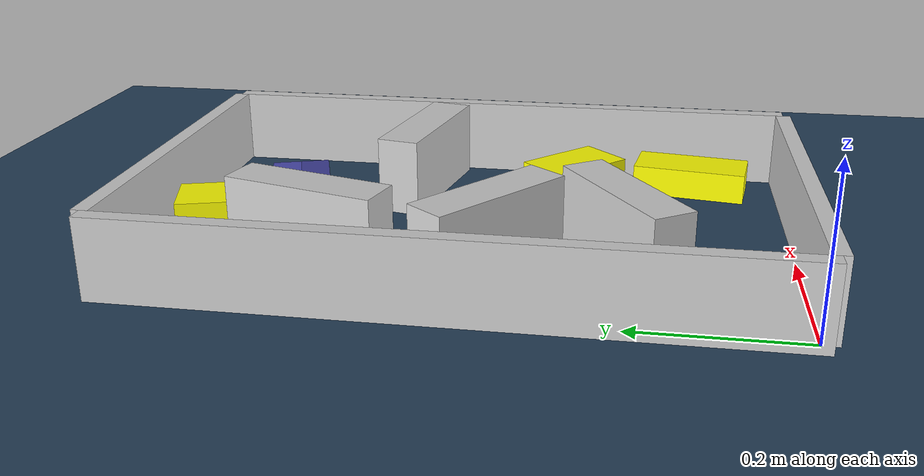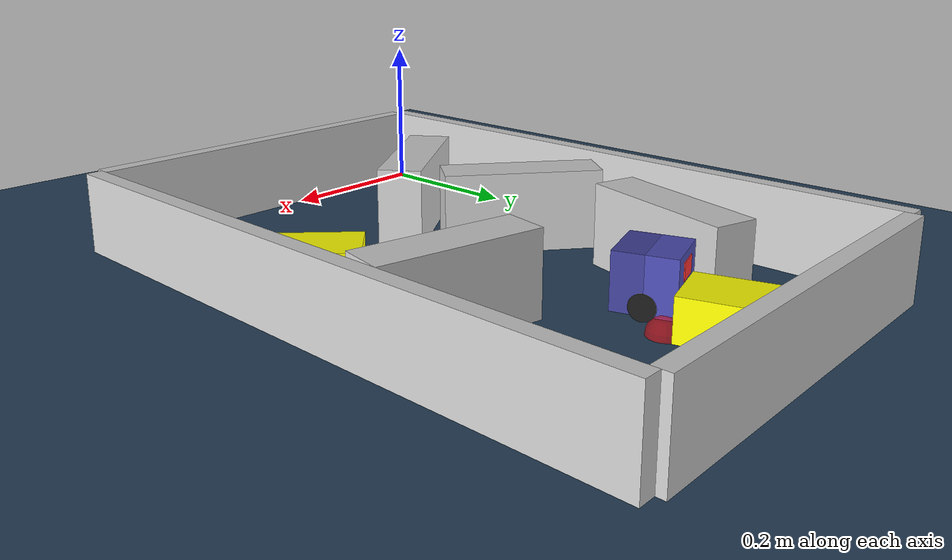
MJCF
<?xml version='1.0' encoding='utf-8'?>
<mujoco model="real_buildable">
  <compiler angle="degree" />
  <option timestep="0.002" integrator="implicitfast" iterations="100" cone="elliptic" />
  <default>
    <geom density="1" />
  </default>
  <asset>
    <texture builtin="gradient" height="3072" rgb1="0.3 0.5 0.7" rgb2="0 0 0" type="skybox" width="512" />
    <texture builtin="checker" height="300" mark="edge" markrgb="0.8 0.8 0.8" name="groundplane" rgb1="0.2 0.3 0.4" rgb2="0.1 0.2 0.3" type="2d" width="300" />
    <material name="groundplane" reflectance="0.2" texrepeat="5 5" texture="groundplane" texuniform="true" />
  </asset>
  <worldbody>
    <light dir="0 0 -1" directional="true" pos="0 0 1.5" />
    <geom name="floor" type="plane" condim="4" friction="0.5 0.005 0.001" material="groundplane" size="0 0 0.05" />
    <body name="walls">
      <geom name="wall_boundary_left" type="box" condim="4" friction="1.0 0.005 0.0001" rgba="0.8 0.8 0.8 1" pos="-0.010000 0.387500 0.050000" euler="0 0 0.000000" size="0.010000 0.397500 0.050000" />
      <geom name="wall_boundary_right" type="box" condim="4" friction="1.0 0.005 0.0001" rgba="0.8 0.8 0.8 1" pos="0.500000 0.387500 0.050000" euler="0 0 0.000000" size="0.010000 0.397500 0.050000" />
      <geom name="wall_boundary_bottom" type="box" condim="4" friction="1.0 0.005 0.0001" rgba="0.8 0.8 0.8 1" pos="0.245000 -0.010000 0.050000" euler="0 0 0.000000" size="0.245000 0.010000 0.050000" />
      <geom name="wall_boundary_top" type="box" condim="4" friction="1.0 0.005 0.0001" rgba="0.8 0.8 0.8 1" pos="0.245000 0.785000 0.050000" euler="0 0 0.000000" size="0.245000 0.010000 0.050000" />
      <geom name="wall_inner_1" type="box" condim="4" friction="1.0 0.005 0.0001" rgba="0.8 0.8 0.8 1" pos="0.132334 0.356972 0.050000" euler="0 0 -38.596144" size="0.097500 0.027500 0.050000" />
      <geom name="wall_inner_2" type="box" condim="4" friction="1.0 0.005 0.0001" rgba="0.8 0.8 0.8 1" pos="0.163333 0.201811 0.050000" euler="0 0 34.167139" size="0.097500 0.027500 0.050000" />
      <geom name="wall_inner_3" type="box" condim="4" friction="1.0 0.005 0.0001" rgba="0.8 0.8 0.8 1" pos="0.389000 0.481000 0.050000" euler="0 0 168.700000" size="0.097500 0.027500 0.050000" />
      <geom name="wall_inner_4" type="box" condim="4" friction="1.0 0.005 0.0001" rgba="0.8 0.8 0.8 1" pos="0.129000 0.570000 0.050000" euler="0 0 74.300000" size="0.097500 0.027500 0.050000" />
    </body>
    <body name="car" pos="0.21892641487484549 0.60663990396921974 0.01" quat="0.58740613944289766 0 0 0.80929230031231059">
      <freejoint name="car_freejoint" />
      <inertial pos="0 0 0.0375" mass="0.35" diaginertia="0.000266 0.000266 0.000286" />
      <geom name="front_chassis_collision" type="box" pos="0.0175 0 0.0375" size="0.0175 0.035 0.0325" rgba="0.3 0.3 0.7 1" />
      <geom name="rear_chassis_collision" type="box" pos="-0.0175 0 0.0375" size="0.0175 0.035 0.0325" rgba="0.25 0.25 0.6 1" />
      <geom name="front_marker" type="box" pos="0.034 0 0.0505" size="0.002 0.015 0.01" rgba="1 0.2 0.2 1" contype="0" conaffinity="0" />
      <body name="rear_support_body" pos="-0.03 0 0.0025">
        <joint name="rear_caster_joint" type="ball" damping="0.0001" />
        <inertial pos="0 0 0" mass="0.025" diaginertia="0.000001 0.000001 0.000001" />
        <geom name="rear_support" type="sphere" pos="0 0 0" size="0.0025" friction="0 0 0" rgba="0.7 0.1 0.1 1" />
      </body>
      <body name="front_support_body" pos="0.03 0 0.0025">
        <joint name="front_caster_joint" type="ball" damping="0.0001" />
        <inertial pos="0 0 0" mass="0.025" diaginertia="0.000001 0.000001 0.000001" />
        <geom name="front_support" type="sphere" pos="0 0 0" size="0.0025" friction="0 0 0" rgba="0.1 0.7 0.1 1" />
      </body>
      <body name="left_wheel" pos="0 0.0375 0.015">
        <inertial pos="0 0 0" mass="0.05" diaginertia="0.000003 0.000006 0.000003" />
        <joint name="left_wheel_joint" type="hinge" axis="0 1 0" damping="0.01" armature="0.0001" />
        <geom name="left_wheel_collision" type="cylinder" size="0.015 0.0005" euler="90 0 0" rgba="0.1 0.1 0.1 1" />
      </body>
      <body name="right_wheel" pos="0 -0.0375 0.015">
        <inertial pos="0 0 0" mass="0.05" diaginertia="0.000003 0.000006 0.000003" />
        <joint name="right_wheel_joint" type="hinge" axis="0 1 0" damping="0.01" armature="0.0001" />
        <geom name="right_wheel_collision" type="cylinder" size="0.015 0.0005" euler="90 0 0" rgba="0.1 0.1 0.1 1" />
      </body>
    </body>
    <body name="obstacle_0_movable">
      <geom name="obstacle_0_movable" condim="4" pos="0.39859952944218163 0.27447374556409193 0.025000000000000001" friction="1 0.005 0.0001" rgba="1 1 0 1" size="0.037500 0.060000 0.025000" type="box" mass="0.1" quat="0.9222650992644601 0 0 0.38655799911360733" />
      <joint type="free" />
    </body>
    <body name="obstacle_1_movable">
      <geom name="obstacle_1_movable" condim="4" pos="0.20703628988801831 0.70390783361158915 0.025000000000000001" friction="1 0.005 0.0001" rgba="1 1 0 1" size="0.037500 0.060000 0.025000" type="box" mass="0.1" quat="0.98961087922139557 0 0 0.14377172088646809" />
      <joint type="free" />
    </body>
    <body name="obstacle_2_movable">
      <geom name="obstacle_2_movable" condim="4" pos="0.44075167635246454 0.11398884748387464 0.02" friction="1 0.005 0.0001" rgba="1 1 0 1" size="0.035000 0.075000 0.020000" type="box" mass="0.1" quat="0.074952430256441299 0 0 0.99718711042544739" />
      <joint type="free" />
    </body>
    <site name="goal" type="sphere" pos="0.245000 0.640000 0.0" size="0.02" rgba="1 0 0 0.5" />
  </worldbody>
  <actuator>
    <velocity name="left_wheel_drive" joint="left_wheel_joint" ctrlrange="-25 25" kv="0.75" forcerange="-0.5 0.5" />
    <velocity name="right_wheel_drive" joint="right_wheel_joint" ctrlrange="-25 25" kv="0.75" forcerange="-0.5 0.5" />
  </actuator>
</mujoco>
